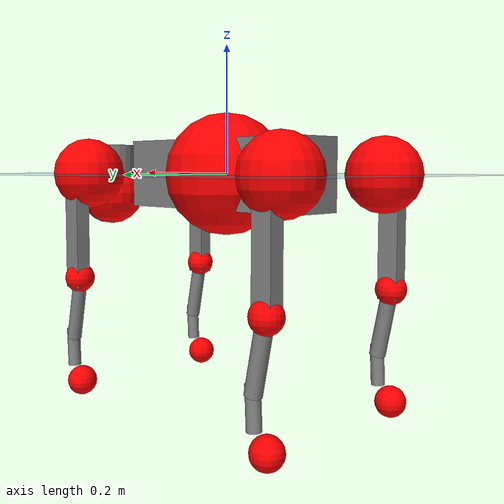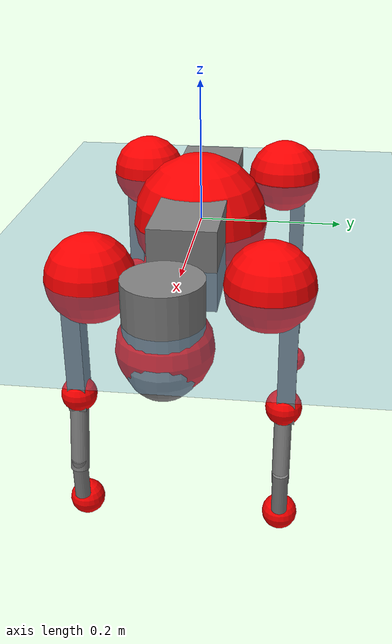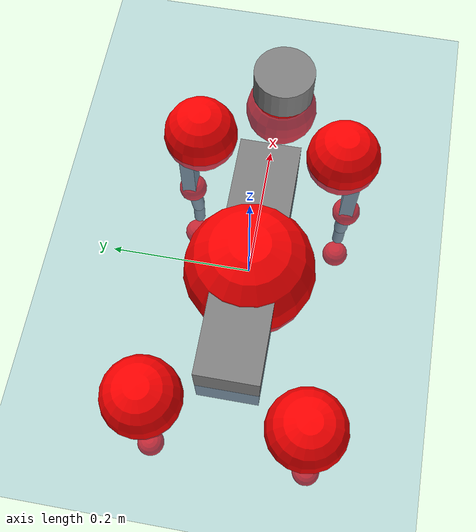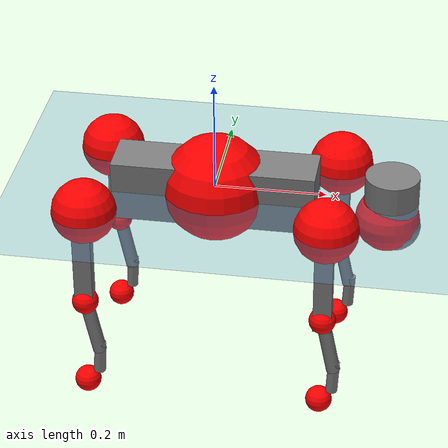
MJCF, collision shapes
<mujoco model="go2">
  <compiler angle="radian" assetdir="assets" balanceinertia="true" inertiafromgeom="false"/>

  <option timestep="0.005" density="1.2" viscosity="2e-05"/>

  <size nkey="1"/>

  <visual>
    <quality shadowsize="8192"/>
    <map shadowclip="0.5"/>
  </visual>

  <default>
    <default class="/">
      <geom contype="0" conaffinity="0" group="1" solref="-1000 -80"/>
      <site size="0.01 0.005 0.005" group="5"/>
      <general forcelimited="true" biastype="affine" gainprm="20" biasprm="0 -20 -0.5"/>
      <default class="go2">
        <joint armature="0.01" damping="0.01" frictionloss="0.2"/>
        <geom condim="1" margin="0.001"/>
        <default class="visual">
          <geom type="mesh" group="2"/>
        </default>
        <default class="collision">
          <geom group="3"/>
          <default class="foot">
            <geom size="0.022 0 0" condim="6" priority="1" friction="0.8 0.02 0.01" solimp="0.015 1 0.022"/>
          </default>
        </default>
        <default class="reward_collision_sphere">
          <geom group="5" rgba="1 0 0 1"/>
        </default>
      </default>
    </default>
  </default>

  <asset>
    <texture type="skybox" colorspace="auto" name="//unnamed_texture_0" builtin="gradient" rgb1="0.95 0.95 0.95" rgb2="0.95 0.95 0.95" width="100" height="600"/>
    <texture type="2d" colorspace="auto" name="texplane" builtin="checker" rgb1="0.345 0.575 0.748" rgb2="0.345 0.575 0.748" markrgb="1 1 1" width="512" height="512"/>
    <material name="MatPlane" class="/" texture="texplane" texuniform="true" texrepeat="2 2" specular="0.9"/>
    <material name="metal" class="/" rgba="0.9 0.95 0.95 1"/>
    <material name="black" class="/" rgba="0 0 0 1"/>
    <material name="white" class="/"/>
    <material name="gray" class="/" rgba="0.671705 0.692426 0.77427 1"/>
    <mesh name="base_0" class="/" file="base_0.obj"/>
    <mesh name="base_1" class="/" file="base_1.obj"/>
    <mesh name="base_2" class="/" file="base_2.obj"/>
    <mesh name="base_3" class="/" file="base_3.obj"/>
    <mesh name="base_4" class="/" file="base_4.obj"/>
    <mesh name="hip_0" class="/" file="hip_0.obj"/>
    <mesh name="hip_1" class="/" file="hip_1.obj"/>
    <mesh name="thigh_0" class="/" file="thigh_0.obj"/>
    <mesh name="thigh_1" class="/" file="thigh_1.obj"/>
    <mesh name="thigh_mirror_0" class="/" file="thigh_mirror_0.obj"/>
    <mesh name="thigh_mirror_1" class="/" file="thigh_mirror_1.obj"/>
    <mesh name="calf_0" class="/" file="calf_0.obj"/>
    <mesh name="calf_1" class="/" file="calf_1.obj"/>
    <mesh name="calf_mirror_0" class="/" file="calf_mirror_0.obj"/>
    <mesh name="calf_mirror_1" class="/" file="calf_mirror_1.obj"/>
    <mesh name="foot" class="/" file="foot.obj"/>
  </asset>

  <worldbody>
    <geom name="floor" class="/" size="100 100 0.125" type="plane" group="0" material="MatPlane"/>
    <light name="toplight_shadow" class="/" pos="0 0 5" dir="0.0990148 0.0990148 -0.990148" type="directional" ambient="0.04 0.04 0.04" diffuse="0.55 0.55 0.55" specular="0.12 0.12 0.12"/>
    <light name="toplight_fill" class="/" pos="0 0 5" dir="0.0990148 0.0990148 -0.990148" type="directional" castshadow="false" ambient="0.04 0.04 0.04" diffuse="0.3 0.3 0.3" specular="0.08 0.08 0.08"/>
    <body name="trunk" childclass="go2" pos="0.00216967 -0.000928997 -0.000553776" quat="1 -0.000165642 -0.00031453 -0.000214805">
      <inertial pos="0.0230484 -0.000606724 -0.00446421" quat="-0.000194786 0.713414 -0.000996729 0.700742" mass="6.20846" diaginertia="0.182658 0.0895625 0.00919486"/>
      <joint name="//unnamed_joint_0" type="free" armature="0" damping="0" frictionloss="0"/>
      <geom name="//unnamed_geom_1" class="visual" material="black" mesh="base_0"/>
      <geom name="//unnamed_geom_2" class="visual" material="black" mesh="base_1"/>
      <geom name="//unnamed_geom_3" class="visual" material="black" mesh="base_2"/>
      <geom name="//unnamed_geom_4" class="visual" material="white" mesh="base_3"/>
      <geom name="//unnamed_geom_5" class="visual" material="gray" mesh="base_4"/>
      <geom name="trunk_1" class="collision" size="0.181892 0.0452071 0.0551188" type="box"/>
      <geom name="trunk_2" class="collision" size="0.0483498 0.0435148" pos="0.314074 0 0.00821849" type="cylinder"/>
      <geom name="trunk_3" class="collision" size="0.0454488" pos="0.32289 0 -0.0493109"/>
      <geom name="//unnamed_geom_9" class="reward_collision_sphere" size="0.0966996"/>
      <geom name="//unnamed_geom_10" class="reward_collision_sphere" size="0.0580198" pos="0.308564 0 -0.0369832"/>
      <site name="imu" pos="-0.0330565 -0.000594538 0.0222627" size="0.00966996"/>
      <camera name="track" pos="0 -1.95425 0" quat="0.707107 0.707107 0 0" mode="trackcom"/>
      <camera name="ego_camera" pos="0.343828 0 0.0369832" quat="-0.5 -0.5 0.5 0.5"/>
      <body name="FL_hip" pos="0.213515 0.0459145 0.000297804" quat="1 0.000559714 0.000232797 -0.000575524">
        <inertial pos="-0.00820075 0.00291684 2.87406e-05" quat="0.496901 0.499144 0.505933 0.497973" mass="0.616361" diaginertia="0.00144335 0.000522118 0.000178835"/>
        <joint name="FL_hip_joint" pos="0 0 0" axis="0.999898 0.00363585 -0.0137944" range="-1.0612 1.04984" armature="0.008444" damping="0.00660712" frictionloss="0.189237"/>
        <geom name="//unnamed_geom_11" class="visual" material="metal" mesh="hip_0"/>
        <geom name="//unnamed_geom_12" class="visual" material="gray" mesh="hip_1"/>
        <geom name="//unnamed_geom_13" class="collision" size="0.0444818 0.0193399" pos="0 0.0781701 0" quat="0.707107 0.707107 0 0" type="cylinder"/>
        <geom name="//unnamed_geom_14" class="reward_collision_sphere" size="0.0580198" pos="0 0.0683988 0"/>
        <body name="FL_thigh" pos="-0.00124184 0.0936312 0.000660262" quat="1 -0.000157809 0.000105596 0.000159878">
          <inertial pos="-0.00479386 -0.0215237 -0.0292758" quat="0.830547 0.0858947 -0.0183715 0.549979" mass="1.06068" diaginertia="0.00979912 0.00527536 0.00033367"/>
          <joint name="FL_thigh_joint" pos="0 0 0" axis="-0.000921176 0.999956 0.00936697" range="-1.58702 3.49297" armature="0.0106061" damping="0.00146646" frictionloss="0.192386"/>
          <geom name="//unnamed_geom_15" class="visual" material="metal" mesh="thigh_0"/>
          <geom name="//unnamed_geom_16" class="visual" material="gray" mesh="thigh_1"/>
          <geom name="//unnamed_geom_17" class="collision" size="0.102985 0.0118457 0.0164389" pos="0 0 -0.0875269" quat="0.707107 0 0.707107 0" type="box"/>
          <body name="FL_calf" pos="-0.000418981 -0.0030121 -0.175068" quat="1 -0.000463726 -0.000151678 0.00019203">
            <inertial pos="0.00672969 -9.33868e-06 -0.116376" quat="0.704348 -0.00210503 0.00254599 0.709847" mass="0.219885" diaginertia="0.00238958 0.00130731 1.95284e-05"/>
            <joint name="FL_calf_joint" pos="0 0 0" axis="-0.00724923 0.999928 0.00953715" stiffness="0.00262543" range="-2.72192 -0.83637" armature="0.00961679" damping="0" frictionloss="0.19821"/>
            <geom name="//unnamed_geom_18" class="visual" material="gray" mesh="calf_0"/>
            <geom name="//unnamed_geom_19" class="visual" material="black" mesh="calf_1"/>
            <geom name="FL_calf0" class="collision" size="0.011604 0.0580198" pos="0.00881611 0 -0.0493109" quat="0.994493 0 -0.104807 0" type="cylinder"/>
            <geom name="//unnamed_geom_21" class="collision" size="0.010637 0.0314274" pos="0.0220403 0 -0.121634" quat="0.999688 0 0.0249974 0" type="cylinder"/>
            <geom name="//unnamed_geom_22" class="visual" pos="0 0 -0.175054" quat="1 0 0 0" material="black" mesh="foot"/>
            <geom name="FL_foot" class="foot" size="0.0190917" pos="-0.00220403 0 -0.175054"/>
            <geom name="//unnamed_geom_24" class="reward_collision_sphere" size="0.0241749"/>
            <geom name="//unnamed_geom_25" class="reward_collision_sphere" size="0.0241749" pos="-0.00220403 0 -0.175054"/>
            <site name="FL_foot" class="foot" pos="-0.00220403 0 -0.175054" size="0.00966996"/>
          </body>
        </body>
      </body>
      <body name="FR_hip" pos="0.211238 -0.0425586 -0.0016896" quat="1 5.88114e-06 1.94069e-05 -3.81849e-05">
        <inertial pos="-0.0032339 -0.00284 -0.00266644" quat="0.499334 0.505121 0.499788 0.495711" mass="0.632266" diaginertia="0.00147164 0.000542583 0.000185232"/>
        <joint name="FR_hip_joint" pos="0 0 0" axis="0.999961 0.00184869 0.00864237" stiffness="0.00152619" range="-1.09723 1.05871" armature="0.00967882" damping="0.0155098" frictionloss="0.17568"/>
        <geom name="//unnamed_geom_26" class="visual" pos="0 1.35271e-09 5.80207e-08" quat="4.63268e-05 1 0 0" material="metal" mesh="hip_0"/>
        <geom name="//unnamed_geom_27" class="visual" pos="0 2.19291e-09 -1.43507e-07" quat="4.63268e-05 1 0 0" material="gray" mesh="hip_1"/>
        <geom name="//unnamed_geom_28" class="collision" size="0.0444818 0.0193399" pos="0 -0.0781701 0" quat="0.707107 0.707107 0 0" type="cylinder"/>
        <geom name="//unnamed_geom_29" class="reward_collision_sphere" size="0.0580198" pos="0 -0.0683988 0"/>
        <body name="FR_thigh" pos="0.000838939 -0.0935808 0.000699748" quat="1 3.62473e-06 -1.69785e-05 -5.06661e-08">
          <inertial pos="-0.00326929 0.0245417 -0.0277657" quat="0.551357 -0.0204231 0.0849017 0.829687" mass="1.02707" diaginertia="0.00964164 0.00512638 0.00032477"/>
          <joint name="FR_thigh_joint" pos="0 0 0" axis="0.00250894 -0.999996 -0.00153452" range="-3.49707 1.56041" armature="0.0101945" damping="0.00884475" frictionloss="0.188975"/>
          <geom name="//unnamed_geom_30" class="visual" material="metal" mesh="thigh_mirror_0"/>
          <geom name="//unnamed_geom_31" class="visual" material="gray" mesh="thigh_mirror_1"/>
          <geom name="//unnamed_geom_32" class="collision" size="0.102985 0.0118457 0.0164389" pos="0 0 -0.0875269" quat="0.707107 0 0.707107 0" type="box"/>
          <body name="FR_calf" pos="-0.000381994 -0.000671108 -0.173042" quat="0.999999 -0.000972697 0.000302224 -0.000736265">
            <inertial pos="0.0095488 0.000187184 -0.114705" quat="0.703448 -0.00599824 0.00223383 0.710718" mass="0.213277" diaginertia="0.00241375 0.00133666 2.0571e-05"/>
            <joint name="FR_calf_joint" pos="0 0 0" axis="-0.00516695 -0.999986 -0.000800785" stiffness="0.00548249" range="0.786462 2.71262" armature="0.00974127" damping="0.0203317" frictionloss="0.213738"/>
            <geom name="//unnamed_geom_33" class="visual" material="gray" mesh="calf_mirror_0"/>
            <geom name="//unnamed_geom_34" class="visual" material="black" mesh="calf_mirror_1"/>
            <geom name="FR_calf0" class="collision" size="0.0125709 0.0580198" pos="0.0110201 0 -0.0493109" quat="0.995004 0 -0.0998334 0" type="cylinder"/>
            <geom name="//unnamed_geom_36" class="collision" size="0.010637 0.0314274" pos="0.0220403 0 -0.121634" quat="0.999688 0 0.0249974 0" type="cylinder"/>
            <geom name="//unnamed_geom_37" class="visual" pos="0 0 -0.175054" quat="1 0 0 0" material="black" mesh="foot"/>
            <geom name="FR_foot" class="foot" size="0.0218319" pos="-0.00220403 0 -0.175054"/>
            <geom name="//unnamed_geom_39" class="reward_collision_sphere" size="0.0241749"/>
            <geom name="//unnamed_geom_40" class="reward_collision_sphere" size="0.0241749" pos="-0.00220403 0 -0.175054"/>
            <site name="FR_foot" class="foot" pos="-0.00220403 0 -0.175054" size="0.00966996"/>
          </body>
        </body>
      </body>
      <body name="RL_hip" pos="-0.210799 0.0440979 0.00124732" quat="1 6.51363e-06 -2.66278e-05 -1.64866e-05">
        <inertial pos="0.00835931 -0.000429437 -0.00036581" quat="0.503918 0.506411 0.496105 0.493451" mass="0.617388" diaginertia="0.00145557 0.000532233 0.00017576"/>
        <joint name="RL_hip_joint" pos="0 0 0" axis="-0.999967 0.00748157 0.00323406" stiffness="0.000610658" range="-1.03019 1.0248" armature="0.00969033" damping="0.00789428" frictionloss="0.203467"/>
        <geom name="//unnamed_geom_41" class="visual" pos="-2.44068e-09 0 -4.78429e-07" quat="4.63268e-05 0 1 0" material="metal" mesh="hip_0"/>
        <geom name="//unnamed_geom_42" class="visual" pos="-3.95663e-09 0 -4.24299e-07" quat="4.63268e-05 0 1 0" material="gray" mesh="hip_1"/>
        <geom name="//unnamed_geom_43" class="collision" size="0.0444818 0.0193399" pos="0 0.0781701 0" quat="0.707107 0.707107 0 0" type="cylinder"/>
        <geom name="//unnamed_geom_44" class="reward_collision_sphere" size="0.0580198" pos="0 0.0683988 0"/>
        <body name="RL_thigh" pos="0.000213876 0.0926238 0.000364124" quat="1 -0.000316323 0.000162868 -0.000298506">
          <inertial pos="-0.00464954 -0.0191406 -0.0263566" quat="0.831351 0.0829868 -0.0136782 0.549347" mass="1.04778" diaginertia="0.00970574 0.00530963 0.000323237"/>
          <joint name="RL_thigh_joint" pos="0 0 0" axis="0.00288679 0.999964 0.00794047" range="-0.506893 4.54208" armature="0.0108492" damping="0.00216728" frictionloss="0.211707"/>
          <geom name="//unnamed_geom_45" class="visual" material="metal" mesh="thigh_0"/>
          <geom name="//unnamed_geom_46" class="visual" material="gray" mesh="thigh_1"/>
          <geom name="//unnamed_geom_47" class="collision" size="0.102985 0.0118457 0.0164389" pos="0 0 -0.0875269" quat="0.707107 0 0.707107 0" type="box"/>
          <body name="RL_calf" pos="-0.000862272 0.00158604 -0.177653" quat="0.999999 0.000900404 0.000525001 -0.000635155">
            <inertial pos="0.00750658 -0.000389135 -0.11356" quat="0.710817 0.00106275 -0.00442268 0.703363" mass="0.211381" diaginertia="0.00241523 0.00131029 1.98671e-05"/>
            <joint name="RL_calf_joint" pos="0 0 0" axis="-0.00323317 0.999993 0.00185325" range="-2.73667 -0.849631" armature="0.0092877" damping="0.00946562" frictionloss="0.17899"/>
            <geom name="//unnamed_geom_48" class="visual" material="gray" mesh="calf_0"/>
            <geom name="//unnamed_geom_49" class="visual" material="black" mesh="calf_1"/>
            <geom name="RL_calf0" class="collision" size="0.0125709 0.0580198" pos="0.0110201 0 -0.0493109" quat="0.995004 0 -0.0998334 0" type="cylinder"/>
            <geom name="//unnamed_geom_51" class="collision" size="0.010637 0.0314274" pos="0.0220403 0 -0.121634" quat="0.999688 0 0.0249974 0" type="cylinder"/>
            <geom name="//unnamed_geom_52" class="visual" pos="0 0 -0.175054" quat="1 0 0 0" material="black" mesh="foot"/>
            <geom name="RL_foot" class="foot" size="0.0175063" pos="-0.00220403 0 -0.175054"/>
            <geom name="//unnamed_geom_54" class="reward_collision_sphere" size="0.0241749"/>
            <geom name="//unnamed_geom_55" class="reward_collision_sphere" size="0.0241749" pos="-0.00220403 0 -0.175054"/>
            <site name="RL_foot" class="foot" pos="-0.00220403 0 -0.175054" size="0.00966996"/>
          </body>
        </body>
      </body>
      <body name="RR_hip" pos="-0.215396 -0.0470422 -0.000167709" quat="1 -0.000136267 0.000348592 -0.00030579">
        <inertial pos="0.00684703 -0.00205341 -0.000296567" quat="0.505455 0.486912 0.501796 0.505602" mass="0.615611" diaginertia="0.00144508 0.000537532 0.00018174"/>
        <joint name="RR_hip_joint" pos="0 0 0" axis="-0.999911 -0.0117743 0.00626233" stiffness="0.00365396" range="-1.04651 1.02643" armature="0.010068" damping="0.0015863" frictionloss="0.19138"/>
        <geom name="//unnamed_geom_56" class="visual" pos="2.43635e-09 1.35271e-09 -5.3645e-07" quat="2.14617e-09 4.63268e-05 4.63268e-05 -1" material="metal" mesh="hip_0"/>
        <geom name="//unnamed_geom_57" class="visual" pos="3.96733e-09 2.19291e-09 -2.80791e-07" quat="2.14617e-09 4.63268e-05 4.63268e-05 -1" material="gray" mesh="hip_1"/>
        <geom name="//unnamed_geom_58" class="collision" size="0.0444818 0.0193399" pos="0 -0.0781701 0" quat="0.707107 0.707107 0 0" type="cylinder"/>
        <geom name="//unnamed_geom_59" class="reward_collision_sphere" size="0.0580198" pos="0 -0.0683988 0"/>
        <body name="RR_thigh" pos="0.000348656 -0.0927343 0.000865865" quat="1 -0.000104819 0.000196347 6.35441e-06">
          <inertial pos="-0.00469921 0.0213897 -0.0279068" quat="0.545474 -0.0155781 0.0948337 0.832599" mass="1.04827" diaginertia="0.00959124 0.00529827 0.000338798"/>
          <joint name="RR_thigh_joint" pos="0 0 0" axis="0.00134018 -0.999998 0.00140713" range="-4.54181 0.504507" armature="0.0104796" damping="0.00733854" frictionloss="0.197026"/>
          <geom name="//unnamed_geom_60" class="visual" material="metal" mesh="thigh_mirror_0"/>
          <geom name="//unnamed_geom_61" class="visual" material="gray" mesh="thigh_mirror_1"/>
          <geom name="//unnamed_geom_62" class="collision" size="0.102985 0.0118457 0.0164389" pos="0 0 -0.0875269" quat="0.707107 0 0.707107 0" type="box"/>
          <body name="RR_calf" pos="0.000518935 -0.00131251 -0.175587" quat="1 7.82322e-06 0.000217762 -3.58875e-06">
            <inertial pos="0.00467728 -0.00189638 -0.11396" quat="0.702136 -0.00280647 0.00173503 0.712036" mass="0.222043" diaginertia="0.00238465 0.00132824 1.98612e-05"/>
            <joint name="RR_calf_joint" pos="0 0 0" axis="0.00473285 -0.999974 -0.00539823" stiffness="0.00244137" range="0.858842 2.77424" armature="0.0096075" damping="0.0101707" frictionloss="0.217267"/>
            <geom name="//unnamed_geom_63" class="visual" material="gray" mesh="calf_mirror_0"/>
            <geom name="//unnamed_geom_64" class="visual" material="black" mesh="calf_mirror_1"/>
            <geom name="RR_calf0" class="collision" size="0.0125709 0.0580198" pos="0.0110201 0 -0.0493109" quat="0.995004 0 -0.0998334 0" type="cylinder"/>
            <geom name="//unnamed_geom_66" class="collision" size="0.010637 0.0314274" pos="0.0220403 0 -0.121634" quat="0.999688 0 0.0249974 0" type="cylinder"/>
            <geom name="//unnamed_geom_67" class="visual" pos="0 0 -0.175054" quat="1 0 0 0" material="black" mesh="foot"/>
            <geom name="RR_foot" class="foot" size="0.0230447" pos="-0.00220403 0 -0.175054"/>
            <geom name="//unnamed_geom_69" class="reward_collision_sphere" size="0.0241749"/>
            <geom name="//unnamed_geom_70" class="reward_collision_sphere" size="0.0241749" pos="-0.00220403 0 -0.175054"/>
            <site name="RR_foot" class="foot" pos="-0.00220403 0 -0.175054" size="0.00966996"/>
          </body>
        </body>
      </body>
    </body>
  </worldbody>

  <contact>
    <pair class="/" geom1="floor" geom2="FL_foot" name="//unnamed_contact_0"/>
    <pair class="/" geom1="floor" geom2="FR_foot" name="//unnamed_contact_1"/>
    <pair class="/" geom1="floor" geom2="RL_foot" name="//unnamed_contact_2"/>
    <pair class="/" geom1="floor" geom2="RR_foot" name="//unnamed_contact_3"/>
  </contact>

  <actuator>
    <general name="FL_hip" class="/" joint="FL_hip_joint" forcerange="-22.8713 22.8713" gainprm="19.5129" biasprm="0 -19.5129 -0.471731"/>
    <general name="FL_thigh" class="/" joint="FL_thigh_joint" forcerange="-21.34 21.34" gainprm="19.5129" biasprm="0 -19.5129 -0.471731"/>
    <general name="FL_calf" class="/" joint="FL_calf_joint" forcerange="-43.1665 43.1665" gainprm="19.5129" biasprm="0 -19.5129 -0.471731"/>
    <general name="FR_hip" class="/" joint="FR_hip_joint" forcerange="-22.8721 22.8721" gainprm="19.5129" biasprm="0 -19.5129 -0.471731"/>
    <general name="FR_thigh" class="/" joint="FR_thigh_joint" forcerange="-23.211 23.211" gainprm="19.5129" biasprm="0 -19.5129 -0.471731"/>
    <general name="FR_calf" class="/" joint="FR_calf_joint" forcerange="-45.0468 45.0468" gainprm="19.5129" biasprm="0 -19.5129 -0.471731"/>
    <general name="RL_hip" class="/" joint="RL_hip_joint" forcerange="-23.0334 23.0334" gainprm="19.5129" biasprm="0 -19.5129 -0.471731"/>
    <general name="RL_thigh" class="/" joint="RL_thigh_joint" forcerange="-23.4486 23.4486" gainprm="19.5129" biasprm="0 -19.5129 -0.471731"/>
    <general name="RL_calf" class="/" joint="RL_calf_joint" forcerange="-44.6255 44.6255" gainprm="19.5129" biasprm="0 -19.5129 -0.471731"/>
    <general name="RR_hip" class="/" joint="RR_hip_joint" forcerange="-22.486 22.486" gainprm="19.5129" biasprm="0 -19.5129 -0.471731"/>
    <general name="RR_thigh" class="/" joint="RR_thigh_joint" forcerange="-21.9779 21.9779" gainprm="19.5129" biasprm="0 -19.5129 -0.471731"/>
    <general name="RR_calf" class="/" joint="RR_calf_joint" forcerange="-39.8107 39.8107" gainprm="19.5129" biasprm="0 -19.5129 -0.471731"/>
  </actuator>

  <sensor>
    <gyro site="imu" name="imu_angular_velocity"/>
    <velocimeter site="imu" name="imu_linear_velocity"/>
    <framelinvel objtype="site" objname="FL_foot" name="FL_foot_global_linear_velocity"/>
    <framelinvel objtype="site" objname="FR_foot" name="FR_foot_global_linear_velocity"/>
    <framelinvel objtype="site" objname="RL_foot" name="RL_foot_global_linear_velocity"/>
    <framelinvel objtype="site" objname="RR_foot" name="RR_foot_global_linear_velocity"/>
  </sensor>

  <keyframe>
    <key name="home" qpos="0 0 0.325 1 0 0 0 0.1 0.8 -1.5 -0.1 -0.8 1.5 -0.1 0.8 -1.5 0.1 -0.8 1.5"/>
  </keyframe>
</mujoco>
